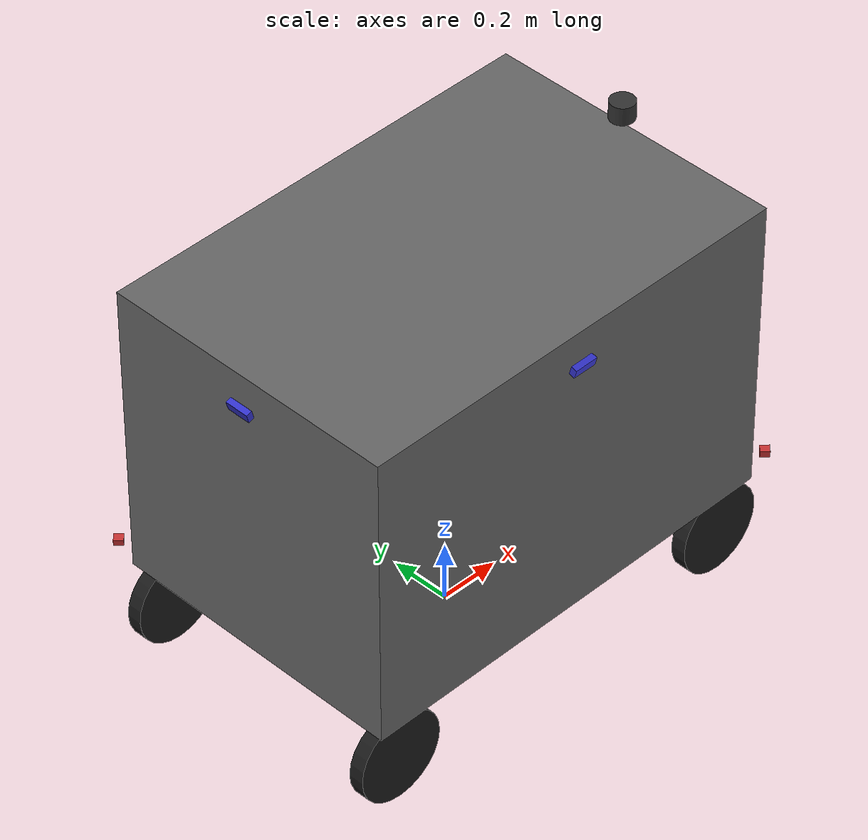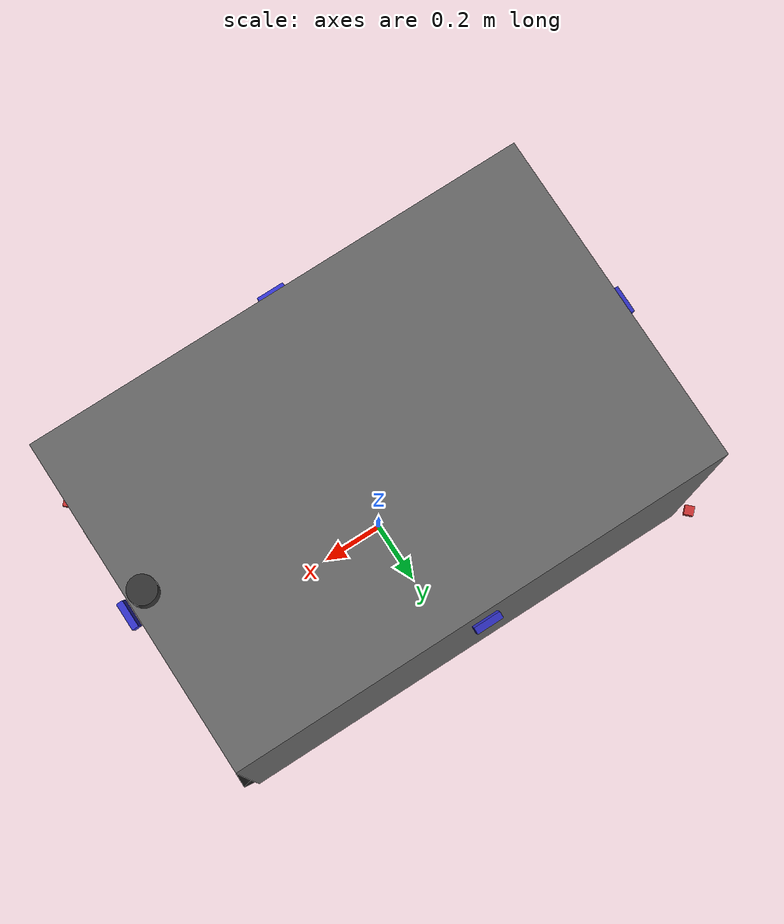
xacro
<?xml version="1.0"?>
<robot xmlns:xacro="http://www.ros.org/wiki/xacro" name="g60pro">
  <!-- G60 Pro: 4轮8驱（每轮独立驱动+转向）+ 多线激光雷达 + 2单线 + 4路单目3D结构光RGBD(朝外略下倾) -->
  <!-- REP-105: x 前, y 左, z 上；地面 z=0 -->
  <!-- ros2_control 控制器配置路径，由 launch 传入 -->
  <xacro:property name="controllers_file" value=""/>

  <!-- ==================== 激光雷达类型选择 ==================== -->
  <!-- 支持: robosense_16 (速腾16线) / livox_mid360 (Livox Mid360) -->
  <!-- 通过 launch 文件传入: xacro:g60pro lidar_type:="livox_mid360" -->
  <xacro:arg name="lidar_type" default="robosense_16"/>
  <xacro:property name="_lidar_type" value="$(arg lidar_type)"/>

  <xacro:property name="chassis_x" value="1.5"/>
  <xacro:property name="chassis_y" value="1.0"/>
  <xacro:property name="chassis_z" value="1.0"/>
  <xacro:property name="ground_clearance" value="0.30"/>
  <!-- 车体中心离地高度 = 离地间隙 + 半高 -->
  <xacro:property name="base_link_z" value="${ground_clearance + chassis_z / 2}"/>
  <!-- 轮子：轮心离地 = wheel_radius（轮底贴地），在车身与地面之间；与 chassis_z 无关，仅用 ground_clearance -->
  <xacro:property name="wheel_radius" value="0.15"/>
  <xacro:property name="wheel_z" value="${wheel_radius - base_link_z}"/>
  <xacro:property name="steer_offset_up" value="0.15"/>
  <xacro:property name="steer_z" value="${wheel_z + steer_offset_up}"/>
  <xacro:property name="camera_height_from_ground" value="1.2"/>
  <!-- 相机相对 base_link 的 z -->
  <xacro:property name="camera_z" value="${camera_height_from_ground - base_link_z}"/>
  <!-- 单线雷达离地高度（相对 base_footprint），相对 base_link 的 z -->
  <xacro:property name="single_lidar_height_from_ground" value="0.40"/>
  <xacro:property name="single_lidar_z" value="${single_lidar_height_from_ground - base_link_z}"/>
  <!-- 单线雷达在车身外：前后超出 single_lidar_outset_x，左右超出 single_lidar_outset_y -->
  <xacro:property name="single_lidar_outset_x" value="0.03"/>
  <xacro:property name="single_lidar_outset_y" value="0.02"/>
  <xacro:property name="single_lidar_front_x" value="${chassis_x/2 + single_lidar_outset_x}"/>
  <!-- 后侧 x = -(chassis_x/2 + outset_x)，保证在车尾之外 -->
  <xacro:property name="single_lidar_rear_x" value="${single_lidar_outset_x - chassis_x/2 - 2*single_lidar_outset_x}"/>
  <xacro:property name="single_lidar_left_y" value="${chassis_y/2 + single_lidar_outset_y}"/>
  <!-- 右侧 y = -(chassis_y/2 + outset_y)，当前 0.5+0.02=0.52 → -0.52 -->
  <xacro:property name="single_lidar_right_y" value="-0.52"/>
  <!-- ==================== 激光雷达宏定义 ==================== -->
  <!-- 速腾16线激光雷达宏 -->
  <xacro:macro name="robosense_16_lidar" params="name parent xyz rpy">
    <link name="${name}_link">
      <visual>
        <geometry><cylinder radius="0.04" length="0.06"/></geometry>
        <material name="dark"><color rgba="0.2 0.2 0.2 1"/></material>
      </visual>
      <inertial><mass value="0.001"/><inertia ixx="1e-6" ixy="0" ixz="0" iyy="1e-6" iyz="0" izz="1e-6"/></inertial>
    </link>
    <joint name="${name}_joint" type="fixed">
      <parent link="${parent}"/>
      <child link="${name}_link"/>
      <origin xyz="${xyz}" rpy="${rpy}"/>
    </joint>
    <gazebo reference="${name}_link">
      <sensor type="gpu_ray" name="${name}_sensor">
        <update_rate>10</update_rate>
        <visualize>false</visualize>
        <ray>
          <scan>
            <horizontal>
              <samples>720</samples>
              <resolution>1</resolution>
              <min_angle>-3.14159</min_angle>
              <max_angle>3.14159</max_angle>
            </horizontal>
            <vertical>
              <samples>16</samples>
              <resolution>1</resolution>
              <min_angle>-0.261799</min_angle>
              <max_angle>0.261799</max_angle>
            </vertical>
          </scan>
          <range>
            <min>0.10</min>
            <max>150.0</max>
            <resolution>0.01</resolution>
          </range>
          <noise>
            <type>gaussian</type>
            <mean>0.0</mean>
            <stddev>0.01</stddev>
          </noise>
        </ray>
        <plugin name="gazebo_ros_${name}" filename="libgazebo_ros_ray_sensor.so">
          <ros>
            <namespace>/lidar</namespace>
            <remapping>~/out:=rs16/points</remapping>
          </ros>
          <output_type>sensor_msgs/PointCloud2</output_type>
          <frame_name>${name}_link</frame_name>
        </plugin>
      </sensor>
    </gazebo>
    <gazebo reference="${name}_link"><material>Gazebo/DarkGrey</material></gazebo>
  </xacro:macro>

  <!-- Livox Mid360激光雷达宏 -->
  <xacro:macro name="livox_mid360_lidar" params="name parent xyz rpy">
    <link name="${name}_link">
      <visual>
        <geometry><cylinder radius="0.035" length="0.055"/></geometry>
        <material name="dark"><color rgba="0.15 0.15 0.15 1"/></material>
      </visual>
      <inertial><mass value="0.001"/><inertia ixx="1e-6" ixy="0" ixz="0" iyy="1e-6" iyz="0" izz="1e-6"/></inertial>
    </link>
    <joint name="${name}_joint" type="fixed">
      <parent link="${parent}"/>
      <child link="${name}_link"/>
      <origin xyz="${xyz}" rpy="${rpy}"/>
    </joint>
    <gazebo reference="${name}_link">
      <sensor type="gpu_ray" name="${name}_sensor">
        <update_rate>10</update_rate>
        <visualize>false</visualize>
        <ray>
          <scan>
            <horizontal>
              <samples>720</samples>
              <resolution>1</resolution>
              <min_angle>-3.14159</min_angle>
              <max_angle>3.14159</max_angle>
            </horizontal>
            <vertical>
              <samples>32</samples>
              <resolution>1</resolution>
              <min_angle>-0.785398</min_angle>
              <max_angle>0.785398</max_angle>
            </vertical>
          </scan>
          <range>
            <min>0.10</min>
            <max>100.0</max>
            <resolution>0.01</resolution>
          </range>
          <noise>
            <type>gaussian</type>
            <mean>0.0</mean>
            <stddev>0.005</stddev>
          </noise>
        </ray>
        <plugin name="gazebo_ros_${name}" filename="libgazebo_ros_ray_sensor.so">
          <ros>
            <namespace>/lidar</namespace>
            <remapping>~/out:=rs16/points</remapping>
          </ros>
          <output_type>sensor_msgs/PointCloud2</output_type>
          <frame_name>${name}_link</frame_name>
        </plugin>
      </sensor>
    </gazebo>
    <gazebo reference="${name}_link"><material>Gazebo/DarkGrey</material></gazebo>
  </xacro:macro>

  <!-- ==================== 通用参数 ==================== -->
  <!-- 多线雷达安装参数（两种雷达通用） -->
  <xacro:property name="multi_lidar_height_from_ground" value="1.4"/>
  <xacro:property name="multi_lidar_z" value="${multi_lidar_height_from_ground - base_link_z}"/>
  <xacro:property name="multi_lidar_offset_x" value="0.70"/>

  <!-- base_footprint: 地面投影点，z=0 -->
  <link name="base_footprint"/>

  <!-- base_link: 车体中心，整体上移使底盘底面离地 ground_clearance -->
  <link name="base_link">
    <visual>
      <geometry><box size="${chassis_x} ${chassis_y} ${chassis_z}"/></geometry>
      <material name="grey"><color rgba="0.4 0.4 0.4 1"/></material>
    </visual>
    <collision>
      <geometry><box size="${chassis_x} ${chassis_y} ${chassis_z}"/></geometry>
    </collision>
    <inertial>
      <mass value="80"/>
      <inertia ixx="1" ixy="0" ixz="0" iyy="1" iyz="0" izz="1"/>
    </inertial>
  </link>
  <joint name="base_footprint_joint" type="fixed">
    <parent link="base_footprint"/>
    <child link="base_link"/>
    <origin xyz="0 0 ${base_link_z}" rpy="0 0 0"/>
  </joint>

  <!-- ==================== 多线激光雷达（条件编译） ==================== -->
  <!-- 根据 lidar_type 参数选择对应的激光雷达模型 -->
  <xacro:if value="${_lidar_type == 'robosense_16'}">
    <xacro:robosense_16_lidar name="rs16" parent="base_link" xyz="${multi_lidar_offset_x} 0 ${multi_lidar_z}" rpy="0 0 0"/>
  </xacro:if>
  <xacro:if value="${_lidar_type == 'livox_mid360'}">
    <xacro:livox_mid360_lidar name="livox" parent="base_link" xyz="${multi_lidar_offset_x} 0 ${multi_lidar_z}" rpy="0 0 0"/>
  </xacro:if>
  <xacro:unless value="${_lidar_type == 'robosense_16' or _lidar_type == 'livox_mid360'}">
    <!-- 默认使用速腾16线 -->
    <xacro:robosense_16_lidar name="rs16" parent="base_link" xyz="${multi_lidar_offset_x} 0 ${multi_lidar_z}" rpy="0 0 0"/>
  </xacro:unless>

  <!-- 单线 1: 右前，车身外；倒装(roll 180°) + 270° 扇区朝右前(yaw -45°) -->
  <link name="single_lidar_1_link">
    <visual>
      <geometry><box size="0.03 0.03 0.02"/></geometry>
      <material name="red"><color rgba="0.8 0.2 0.2 1"/></material>
    </visual>
    <inertial><mass value="0.001"/><inertia ixx="1e-6" ixy="0" ixz="0" iyy="1e-6" iyz="0" izz="1e-6"/></inertial>
  </link>
  <joint name="single_lidar_1_joint" type="fixed">
    <parent link="base_link"/>
    <child link="single_lidar_1_link"/>
    <origin xyz="${single_lidar_front_x} ${single_lidar_right_y} ${single_lidar_z}" rpy="3.14159 0 -0.785398"/>
  </joint>
  <!-- 单线 1 仿真：ray 传感器发布 LaserScan，话题 /lidar/single_1/scan，与 hardware_spec 一致 -->
  <gazebo reference="single_lidar_1_link">
    <sensor type="ray" name="single_lidar_1_sensor">
      <visualize>true</visualize>
      <pose>0 0 0 0 0 0</pose>
      <ray>
        <scan>
          <horizontal>
            <samples>360</samples>
            <resolution>1</resolution>
            <min_angle>-2.35619</min_angle>
            <max_angle>2.35619</max_angle>
          </horizontal>
        </scan>
        <range>
          <min>0.10</min>
          <max>10.0</max>
          <resolution>0.01</resolution>
        </range>
        <noise>
          <type>gaussian</type>
          <mean>0.0</mean>
          <stddev>0.01</stddev>
        </noise>
      </ray>
      <update_rate>10</update_rate>
      <plugin name="gazebo_ros_single_lidar_1" filename="libgazebo_ros_ray_sensor.so">
        <ros>
          <namespace>/lidar/single_1</namespace>
          <remapping>~/out:=scan</remapping>
        </ros>
        <output_type>sensor_msgs/LaserScan</output_type>
        <frame_name>single_lidar_1_link</frame_name>
      </plugin>
    </sensor>
  </gazebo>

  <!-- 单线 2: 左后，车身外；倒装(roll 180°) + 270° 扇区朝左后(yaw 135°) -->
  <link name="single_lidar_2_link">
    <visual>
      <geometry><box size="0.03 0.03 0.02"/></geometry>
      <material name="red"><color rgba="0.8 0.2 0.2 1"/></material>
    </visual>
    <inertial><mass value="0.001"/><inertia ixx="1e-6" ixy="0" ixz="0" iyy="1e-6" iyz="0" izz="1e-6"/></inertial>
  </link>
  <joint name="single_lidar_2_joint" type="fixed">
    <parent link="base_link"/>
    <child link="single_lidar_2_link"/>
    <origin xyz="${single_lidar_rear_x} ${single_lidar_left_y} ${single_lidar_z}" rpy="3.14159 0 2.35619"/>
  </joint>
  <!-- 单线 2 仿真：ray 传感器发布 LaserScan，话题 /lidar/single_2/scan，与 hardware_spec 一致 -->
  <gazebo reference="single_lidar_2_link">
    <sensor type="ray" name="single_lidar_2_sensor">
      <visualize>true</visualize>
      <pose>0 0 0 0 0 0</pose>
      <ray>
        <scan>
          <horizontal>
            <samples>360</samples>
            <resolution>1</resolution>
            <min_angle>-2.35619</min_angle>
            <max_angle>2.35619</max_angle>
          </horizontal>
        </scan>
        <range>
          <min>0.10</min>
          <max>10.0</max>
          <resolution>0.01</resolution>
        </range>
        <noise>
          <type>gaussian</type>
          <mean>0.0</mean>
          <stddev>0.01</stddev>
        </noise>
      </ray>
      <update_rate>10</update_rate>
      <plugin name="gazebo_ros_single_lidar_2" filename="libgazebo_ros_ray_sensor.so">
        <ros>
          <namespace>/lidar/single_2</namespace>
          <remapping>~/out:=scan</remapping>
        </ros>
        <output_type>sensor_msgs/LaserScan</output_type>
        <frame_name>single_lidar_2_link</frame_name>
      </plugin>
    </sensor>
  </gazebo>

  <!-- 4 路单目 3D 结构光 RGBD（DaBai DCW2-DW2）：前/后/左/右各一，朝车身外、略朝下（pitch ≈ -15°）；RGB 与深度共用 optical_frame -->
  <!-- 前：+x 方向朝外、略下倾 -->
  <link name="camera_front_link">
    <visual>
      <geometry><box size="0.02 0.08 0.03"/></geometry>
      <material name="blue"><color rgba="0.2 0.2 0.8 1"/></material>
    </visual>
    <inertial><mass value="0.001"/><inertia ixx="1e-6" ixy="0" ixz="0" iyy="1e-6" iyz="0" izz="1e-6"/></inertial>
  </link>
  <joint name="camera_front_joint" type="fixed">
    <parent link="base_link"/>
    <child link="camera_front_link"/>
    <origin xyz="${chassis_x/2 + 0.02} 0 ${camera_z}" rpy="0 0.26 0"/>
  </joint>
  <link name="camera_front_optical_frame"/>
  <joint name="camera_front_optical_joint" type="fixed">
    <parent link="camera_front_link"/>
    <child link="camera_front_optical_frame"/>
    <origin xyz="0 0 0" rpy="-1.5708 0 -1.5708"/>
  </joint>
  <!-- 前向 RGBD 仿真：depth 传感器 + libgazebo_ros_camera.so，话题与 config/hal/cameras.yaml 一致；视锥红色以区分单线雷达 -->
  <gazebo reference="camera_front_link">
    <sensor type="depth" name="camera_front_sensor">
      <update_rate>10</update_rate>
      <visualize>true</visualize>
      <camera>
        <horizontal_fov>1.047</horizontal_fov>
        <image>
          <width>320</width>
          <height>240</height>
          <format>R8G8B8</format>
        </image>
        <depth_camera>
        </depth_camera>
        <clip>
          <near>0.2</near>
          <far>5.0</far>
        </clip>
        <noise>
          <type>gaussian</type>
          <mean>0.0</mean>
          <stddev>0.007</stddev>
        </noise>
      </camera>
      <plugin name="camera_front_plugin" filename="libgazebo_ros_camera.so">
        <ros>
          <namespace>/camera</namespace>
        </ros>
        <camera_name>front</camera_name>
        <frame_name>camera_front_optical_frame</frame_name>
        <min_depth>0.2</min_depth>
        <max_depth>5.0</max_depth>
      </plugin>
    </sensor>
  </gazebo>

  <!-- 后：-x 方向朝外、略下倾 -->
  <link name="camera_rear_link">
    <visual>
      <geometry><box size="0.02 0.08 0.03"/></geometry>
      <material name="blue"><color rgba="0.2 0.2 0.8 1"/></material>
    </visual>
    <inertial><mass value="0.001"/><inertia ixx="1e-6" ixy="0" ixz="0" iyy="1e-6" iyz="0" izz="1e-6"/></inertial>
  </link>
  <joint name="camera_rear_joint" type="fixed">
    <parent link="base_link"/>
    <child link="camera_rear_link"/>
    <origin xyz="-0.77 0 ${camera_z}" rpy="0 0.26 3.14159"/>
  </joint>
  <link name="camera_rear_optical_frame"/>
  <joint name="camera_rear_optical_joint" type="fixed">
    <parent link="camera_rear_link"/>
    <child link="camera_rear_optical_frame"/>
    <origin xyz="0 0 0" rpy="-1.5708 0 -1.5708"/>
  </joint>
  <!-- 后向 RGBD：视锥红色，与单线雷达区分 -->
  <gazebo reference="camera_rear_link">
    <sensor type="depth" name="camera_rear_sensor">
      <update_rate>10</update_rate>
      <visualize>true</visualize>
      <camera>
        <horizontal_fov>1.047</horizontal_fov>
        <image><width>320</width><height>240</height><format>R8G8B8</format></image>
        <depth_camera></depth_camera>
        <clip><near>0.2</near><far>5.0</far></clip>
        <noise><type>gaussian</type><mean>0.0</mean><stddev>0.007</stddev></noise>
      </camera>
      <plugin name="camera_rear_plugin" filename="libgazebo_ros_camera.so">
        <ros><namespace>/camera</namespace></ros>
        <camera_name>rear</camera_name>
        <frame_name>camera_rear_optical_frame</frame_name>
        <min_depth>0.2</min_depth>
        <max_depth>5.0</max_depth>
      </plugin>
    </sensor>
  </gazebo>

  <!-- 左：+y 方向朝外、略下倾；box 薄边(0.02)沿 y 贴车身，8×3 在侧面平面 -->
  <link name="camera_left_link">
    <visual>
      <geometry><box size="0.02 0.08 0.03"/></geometry>
      <material name="blue"><color rgba="0.2 0.2 0.8 1"/></material>
    </visual>
    <inertial><mass value="0.001"/><inertia ixx="1e-6" ixy="0" ixz="0" iyy="1e-6" iyz="0" izz="1e-6"/></inertial>
  </link>
  <joint name="camera_left_joint" type="fixed">
    <parent link="base_link"/>
    <child link="camera_left_link"/>
    <origin xyz="0 ${chassis_y/2 + 0.02} ${camera_z}" rpy="0 0.26 1.5708"/>
  </joint>
  <link name="camera_left_optical_frame"/>
  <joint name="camera_left_optical_joint" type="fixed">
    <parent link="camera_left_link"/>
    <child link="camera_left_optical_frame"/>
    <origin xyz="0 0 0" rpy="-1.5708 0 -1.5708"/>
  </joint>
  <!-- 左侧 RGBD：视锥红色，与单线雷达区分 -->
  <gazebo reference="camera_left_link">
    <sensor type="depth" name="camera_left_sensor">
      <update_rate>10</update_rate>
      <visualize>true</visualize>
      <camera>
        <horizontal_fov>1.047</horizontal_fov>
        <image><width>320</width><height>240</height><format>R8G8B8</format></image>
        <depth_camera></depth_camera>
        <clip><near>0.2</near><far>5.0</far></clip>
        <noise><type>gaussian</type><mean>0.0</mean><stddev>0.007</stddev></noise>
      </camera>
      <plugin name="camera_left_plugin" filename="libgazebo_ros_camera.so">
        <ros><namespace>/camera</namespace></ros>
        <camera_name>left</camera_name>
        <frame_name>camera_left_optical_frame</frame_name>
        <min_depth>0.2</min_depth>
        <max_depth>5.0</max_depth>
      </plugin>
    </sensor>
  </gazebo>

  <!-- 右：-y 方向朝外、略下倾；box 薄边(0.02)沿 y 贴车身，8×3 在侧面平面 -->
  <link name="camera_right_link">
    <visual>
      <geometry><box size="0.02 0.08 0.03"/></geometry>
      <material name="blue"><color rgba="0.2 0.2 0.8 1"/></material>
    </visual>
    <inertial><mass value="0.001"/><inertia ixx="1e-6" ixy="0" ixz="0" iyy="1e-6" iyz="0" izz="1e-6"/></inertial>
  </link>
  <joint name="camera_right_joint" type="fixed">
    <parent link="base_link"/>
    <child link="camera_right_link"/>
    <origin xyz="0 -0.52 ${camera_z}" rpy="0 0.26 -1.5708"/>
  </joint>
  <link name="camera_right_optical_frame"/>
  <joint name="camera_right_optical_joint" type="fixed">
    <parent link="camera_right_link"/>
    <child link="camera_right_optical_frame"/>
    <origin xyz="0 0 0" rpy="-1.5708 0 -1.5708"/>
  </joint>
  <!-- 右侧 RGBD：视锥红色，与单线雷达区分 -->
  <gazebo reference="camera_right_link">
    <sensor type="depth" name="camera_right_sensor">
      <update_rate>10</update_rate>
      <visualize>true</visualize>
      <camera>
        <horizontal_fov>1.047</horizontal_fov>
        <image><width>320</width><height>240</height><format>R8G8B8</format></image>
        <depth_camera></depth_camera>
        <clip><near>0.2</near><far>5.0</far></clip>
        <noise><type>gaussian</type><mean>0.0</mean><stddev>0.007</stddev></noise>
      </camera>
      <plugin name="camera_right_plugin" filename="libgazebo_ros_camera.so">
        <ros><namespace>/camera</namespace></ros>
        <camera_name>right</camera_name>
        <frame_name>camera_right_optical_frame</frame_name>
        <min_depth>0.2</min_depth>
        <max_depth>5.0</max_depth>
      </plugin>
    </sensor>
  </gazebo>

  <!-- IMU（车体中心偏上） -->
  <link name="imu_link">
    <visual>
      <geometry><box size="0.01 0.01 0.01"/></geometry>
      <material name="green"><color rgba="0.2 0.8 0.2 1"/></material>
    </visual>
    <inertial><mass value="0.001"/><inertia ixx="1e-6" ixy="0" ixz="0" iyy="1e-6" iyz="0" izz="1e-6"/></inertial>
  </link>
  <joint name="imu_joint" type="fixed">
    <parent link="base_link"/>
    <child link="imu_link"/>
    <origin xyz="0 0 0.2" rpy="0 0 0"/>
  </joint>
  <!-- 仿真 IMU：发布 /livox/imu，供 Fast-LIO2 建图/定位 -->
  <gazebo reference="imu_link">
    <sensor type="imu" name="imu_sensor">
      <always_on>true</always_on>
      <update_rate>200</update_rate>
      <imu>
        <angular_velocity>
          <x><noise type="gaussian"><mean>0.0</mean><stddev>1e-4</stddev></noise></x>
          <y><noise type="gaussian"><mean>0.0</mean><stddev>1e-4</stddev></noise></y>
          <z><noise type="gaussian"><mean>0.0</mean><stddev>1e-4</stddev></noise></z>
        </angular_velocity>
        <linear_acceleration>
          <x><noise type="gaussian"><mean>0.0</mean><stddev>1e-3</stddev></noise></x>
          <y><noise type="gaussian"><mean>0.0</mean><stddev>1e-3</stddev></noise></y>
          <z><noise type="gaussian"><mean>0.0</mean><stddev>1e-3</stddev></noise></z>
        </linear_acceleration>
      </imu>
      <plugin name="imu_plugin" filename="libgazebo_ros_imu_sensor.so">
        <ros>
          <namespace>/</namespace>
          <remapping>~/out:=/livox/imu</remapping>
        </ros>
        <frame_name>imu_link</frame_name>
      </plugin>
    </sensor>
    <material>Gazebo/Green</material>
  </gazebo>

  <!-- 4 轮 8 驱：每轮 转向(steer) + 驱动(drive 绕轮心轴滚动)；轮径 30cm，位于地面与车身之间 -->
  <xacro:property name="wheel_width" value="0.05"/>
  <!-- 转向关节限位：±90°（1.5708 rad）；左右轮转角约定相反，右侧用 axis 0 0 -1 -->
  <xacro:property name="steer_limit_rad" value="1.5708"/>
  <!-- steer 关节相对车身四角往内收：前后 10cm，左右 5cm（z 不变） -->
  <xacro:property name="wheel_inset_x" value="0.10"/>
  <xacro:property name="wheel_inset_y" value="0.05"/>
  <xacro:property name="wheel_x_front" value="${chassis_x/2 - wheel_inset_x}"/>
  <xacro:property name="wheel_x_rear" value="${wheel_inset_x - chassis_x/2}"/>
  <xacro:property name="wheel_y_left" value="${chassis_y/2 - wheel_inset_y}"/>
  <xacro:property name="wheel_y_right" value="${wheel_inset_y - chassis_y/2}"/>

  <!-- 右侧轮：电机轴朝车身内侧(+y)，需在 drive origin 上多绕 x 转 180° -->
  <xacro:property name="drive_rpy_left" value="1.5708 0 0"/>
  <xacro:property name="drive_rpy_right" value="4.71239 0 0"/>

  <!-- steer_axis: 左侧 0 0 1，右侧 0 0 -1，使左右转角约定相反（同向转弯时左右轮物理方向相反） -->
  <xacro:macro name="steerable_wheel" params="name wx wy drive_origin_rpy steer_axis">
    <!-- 转向连杆（竖轴），关节在轮心上方 15cm；Gazebo 需 collision + inertial -->
    <link name="${name}_steer_link">
      <visual>
        <geometry><cylinder radius="0.025" length="0.08"/></geometry>
        <material name="darkgrey"><color rgba="0.3 0.3 0.3 1"/></material>
      </visual>
      <collision>
        <geometry><cylinder radius="0.025" length="0.08"/></geometry>
      </collision>
      <inertial>
        <mass value="0.5"/>
        <inertia ixx="0.00035" ixy="0" ixz="0" iyy="0.00035" iyz="0" izz="0.00016"/>
      </inertial>
    </link>
    <joint name="${name}_steer_joint" type="revolute">
      <parent link="base_link"/>
      <child link="${name}_steer_link"/>
      <origin xyz="${wx} ${wy} ${steer_z}" rpy="0 0 0"/>
      <axis xyz="${steer_axis}"/>
      <limit lower="${-steer_limit_rad}" upper="${steer_limit_rad}" effort="254" velocity="1.0"/>
    </joint>
    <!-- 驱动轮：在 steer_link 下放 15cm；Gazebo 需 collision + inertial 以着地 -->
    <link name="${name}">
      <visual>
        <geometry><cylinder radius="${wheel_radius}" length="${wheel_width}"/></geometry>
        <material name="black"><color rgba="0.1 0.1 0.1 1"/></material>
      </visual>
      <collision>
        <geometry><cylinder radius="${wheel_radius}" length="${wheel_width}"/></geometry>
      </collision>
      <inertial>
        <mass value="1.0"/>
        <inertia ixx="0.00584" ixy="0" ixz="0" iyy="0.00584" iyz="0" izz="0.01125"/>
      </inertial>
    </link>
    <joint name="${name}_drive_joint" type="continuous">
      <parent link="${name}_steer_link"/>
      <child link="${name}"/>
      <origin xyz="0 0 ${-steer_offset_up}" rpy="${drive_origin_rpy}"/>
      <axis xyz="0 0 1"/>
    </joint>
    <gazebo reference="${name}_steer_link"><material>Gazebo/DarkGrey</material></gazebo>
    <gazebo reference="${name}"><material>Gazebo/Black</material></gazebo>
    <!-- 降低轮地摩擦，使 planar_move 速度模式下实际转弯半径接近 vx/wz，与轮子转角一致 -->
    <gazebo reference="${name}">
      <surface><friction><ode><mu>0.35</mu><mu2>0.35</mu2></ode></friction></surface>
    </gazebo>
  </xacro:macro>
  <xacro:steerable_wheel name="wheel_fl" wx="${wheel_x_front}" wy="${wheel_y_left}" drive_origin_rpy="${drive_rpy_left}" steer_axis="0 0 1"/>
  <xacro:steerable_wheel name="wheel_fr" wx="${wheel_x_front}" wy="${wheel_y_right}" drive_origin_rpy="${drive_rpy_right}" steer_axis="0 0 -1"/>
  <xacro:steerable_wheel name="wheel_rl" wx="${wheel_x_rear}" wy="${wheel_y_left}" drive_origin_rpy="${drive_rpy_left}" steer_axis="0 0 1"/>
  <xacro:steerable_wheel name="wheel_rr" wx="${wheel_x_rear}" wy="${wheel_y_right}" drive_origin_rpy="${drive_rpy_right}" steer_axis="0 0 -1"/>

  <!-- Gazebo：planar_move 插件，订阅 /cmd_vel 直接驱动 base_link 平面运动（无 ros2_control） -->
  <gazebo>
    <plugin name="gazebo_ros_planar_move" filename="libgazebo_ros_planar_move.so">
      <ros>
        <remapping>cmd_vel:=cmd_vel</remapping>
        <remapping>odom:=odom</remapping>
      </ros>
      <update_rate>100</update_rate>
      <publish_rate>50</publish_rate>
      <publish_odom>true</publish_odom>
      <publish_tf>true</publish_tf>
      <odometry_frame>odom</odometry_frame>
      <robot_base_frame>base_footprint</robot_base_frame>
    </plugin>
  </gazebo>

  <!-- Gazebo：材质与颜色，便于仿真中区分 -->
  <gazebo reference="base_link"><material>Gazebo/Grey</material></gazebo>
  <!-- 多线雷达材质在宏内部设置 -->
  <gazebo reference="single_lidar_1_link"><material>Gazebo/Red</material></gazebo>
  <gazebo reference="single_lidar_2_link"><material>Gazebo/Red</material></gazebo>
  <gazebo reference="camera_front_link"><material>Gazebo/Blue</material></gazebo>
  <gazebo reference="camera_rear_link"><material>Gazebo/Blue</material></gazebo>
  <gazebo reference="camera_left_link"><material>Gazebo/Blue</material></gazebo>
  <gazebo reference="camera_right_link"><material>Gazebo/Blue</material></gazebo>
</robot>
